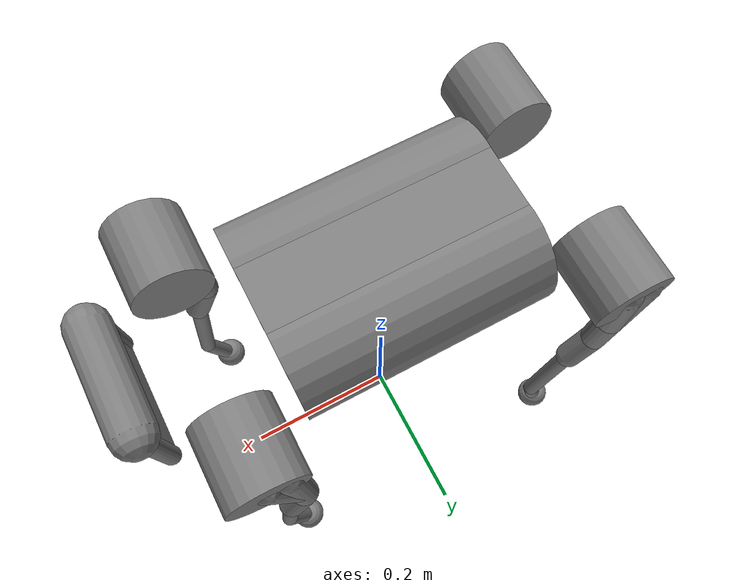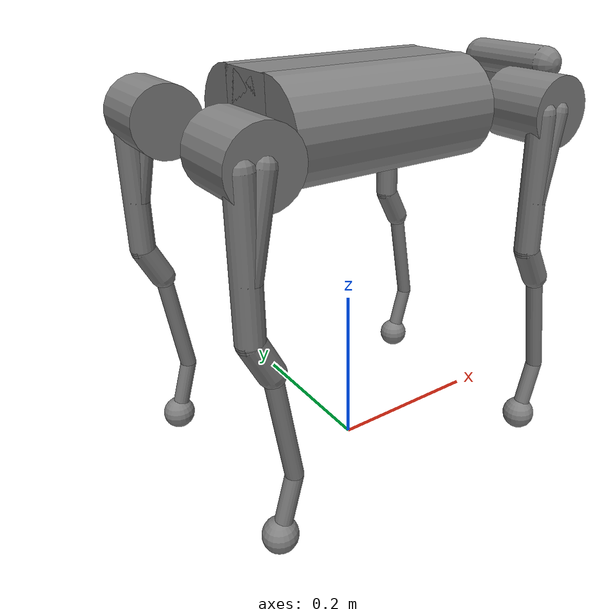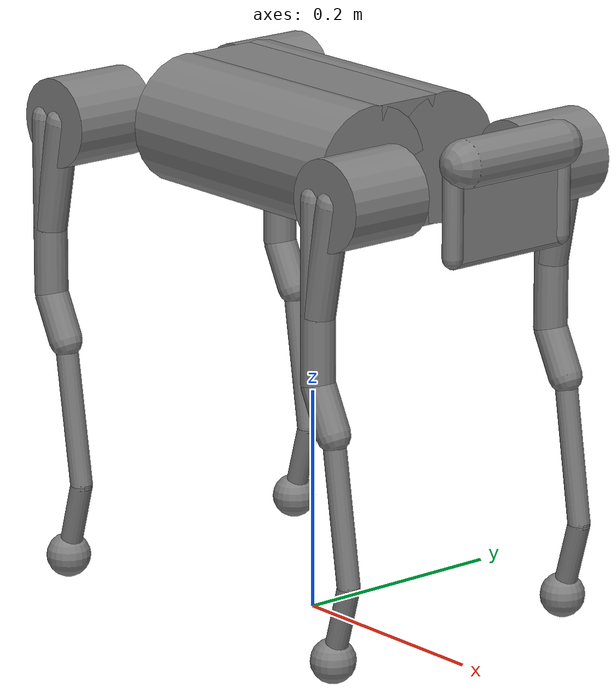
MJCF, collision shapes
<mujoco model="a1">
  <compiler angle="radian" meshdir="assets" texturedir="assets" autolimits="true"/>

  <option cone="elliptic" impratio="100"/>

  <default>
    <default class="a1">
      <geom friction="0.4" margin="0.001" condim="1"/>
      <joint axis="0 1 0" damping="0.1" armature="0.01" frictionloss="0.2"/>
      <motor ctrlrange="-33.5 33.5"/>
      <default class="abduction">
        <joint axis="1 0 0" damping="0" range="-0.802851 0.802851"/>
      </default>
      <default class="hip">
        <joint range="-1.0472 4.18879"/>
      </default>
      <default class="knee">
        <joint range="-2.69653 -0.916298"/>
      </default>
      <default class="visual">
        <geom type="mesh" contype="0" conaffinity="0" group="2" material="dark"/>
      </default>
      <default class="collision">
        <geom group="3" type="capsule"/>
        <default class="hip_left">
          <geom size="0.04 0.04" quat="1 1 0 0" type="cylinder" pos="0 0.055 0"/>
        </default>
        <default class="hip_right">
          <geom size="0.04 0.04" quat="1 1 0 0" type="cylinder" pos="0 -0.055 0"/>
        </default>
        <default class="thigh1">
          <geom size="0.015" fromto="-0.02 0 0 -0.02 0 -0.16"/>
        </default>
        <default class="thigh2">
          <geom size="0.015" fromto="0 0 0 -0.02 0 -0.1"/>
        </default>
        <default class="thigh3">
          <geom size="0.015" fromto="-0.02 0 -0.16 0 0 -0.2"/>
        </default>
        <default class="calf1">
          <geom size="0.01" fromto="0 0 0 0.02 0 -0.13"/>
        </default>
        <default class="calf2">
          <geom size="0.01" fromto="0.02 0 -0.13 0 0 -0.2"/>
        </default>
        <default class="foot">
          <geom type="sphere" size="0.02" pos="0 0 -0.2" priority="1" solimp="0.015 1 0.02" condim="6"
            friction="0.8 0.02 0.01"/>
        </default>
      </default>
    </default>
  </default>

  <asset>
    <material name="dark" specular="0" shininess="0.5" rgba="0.15 0.15 0.15 1"/>
    <texture type="2d" name="trunk_A1" file="trunk_A1.png"/>
    <material name="carbonfibre" texture="trunk_A1" specular="0" shininess="0.25"/>
    <material name="transparent" rgba="1 1 1 0.01"/>

    <mesh class="a1" file="calf.obj"/>
    <mesh class="a1" file="hip.obj"/>
    <mesh class="a1" file="thigh.obj"/>
    <mesh class="a1" file="thigh_mirror.obj"/>
    <mesh class="a1" file="trunk.obj"/>
  </asset>

  <worldbody>
    <light name="spotlight" mode="targetbodycom" target="trunk" pos="0 -1 2"/>
    <body name="trunk" pos="0 0 0.43" childclass="a1">
      <freejoint name="root_joint" />
      <inertial mass="4.713" pos="0 0.0041 -0.0005"
        fullinertia="0.0158533 0.0377999 0.0456542 -3.66e-05 -6.11e-05 -2.75e-05"/>
      <geom class="visual" mesh="trunk" material="carbonfibre"/>
      <geom class="collision" size="0.125 0.04 0.057" type="box"/>
      <geom class="collision" quat="1 0 1 0" pos="0 -0.04 0" size="0.058 0.125" type="cylinder"/>
      <geom class="collision" quat="1 0 1 0" pos="0 +0.04 0" size="0.058 0.125" type="cylinder"/>
      <geom class="collision" pos="0.25 0 0" size="0.005 0.06 0.05" type="box"/>
      <geom class="collision" pos="0.25 0.06 -0.01" size="0.009 0.035"/>
      <geom class="collision" pos="0.25 -0.06 -0.01" size="0.009 0.035"/>
      <geom class="collision" pos="0.25 0 -0.05" size="0.005 0.06" quat="1 1 0 0"/>
      <geom class="collision" pos="0.255 0 0.0355" size="0.021 0.052" quat="1 1 0 0"/>
      <site name="imu" pos="0 0 0"/>
      <body name="FL_hip" pos="0.183 0.047 0">
        <inertial mass="0.696" pos="-0.003311 0.000635 3.1e-05" quat="0.494499 0.491507 0.506268 0.507528"
          diaginertia="0.000807752 0.00055293 0.000468983"/>
        <joint class="abduction" name="FL_hip_joint"/>
        <geom class="visual" mesh="hip"/>
        <geom class="hip_left"/>
        <geom class="collision" size="0.04 0.04" pos="0 0.055 0" quat="1 1 0 0" type="cylinder"/>
        <body name="FL_thigh" pos="0 0.08505 0">
          <inertial mass="1.013" pos="-0.003237 -0.022327 -0.027326" quat="0.999125 0.00256393 -0.0409531 0.00806091"
            diaginertia="0.00555739 0.00513936 0.00133944"/>
          <joint class="hip" name="FL_thigh_joint"/>
          <geom class="visual" mesh="thigh"/>
          <geom class="thigh1"/>
          <geom class="thigh2"/>
          <geom class="thigh3"/>
          <body name="FL_calf" pos="0 0 -0.2">
            <inertial mass="0.226" pos="0.00472659 0 -0.131975" quat="0.706886 0.017653 0.017653 0.706886"
              diaginertia="0.00340344 0.00339393 3.54834e-05"/>
            <joint class="knee" name="FL_calf_joint"/>
            <geom class="visual" mesh="calf"/>
            <geom class="calf1"/>
            <geom class="calf2"/>
            <geom class="foot"/>
            <site name="FL_touch" pos="0 0 -0.2" size="0.022" material="transparent"/>
          </body>
        </body>
      </body>
      <body name="FR_hip" pos="0.183 -0.047 0">
        <inertial mass="0.696" pos="-0.003311 -0.000635 3.1e-05" quat="0.507528 0.506268 0.491507 0.494499"
                  diaginertia="0.000807752 0.00055293 0.000468983"/>
        <joint class="abduction" name="FR_hip_joint"/>
        <geom class="visual" mesh="hip" quat="0 1 0 0"/>
        <geom class="hip_right"/>
        <body name="FR_thigh" pos="0 -0.08505 0">
          <inertial mass="1.013" pos="-0.003237 0.022327 -0.027326" quat="0.999125 -0.00256393 -0.0409531 -0.00806091"
                    diaginertia="0.00555739 0.00513936 0.00133944"/>
          <joint class="hip" name="FR_thigh_joint"/>
          <geom class="visual" mesh="thigh_mirror"/>
          <geom class="thigh1"/>
          <geom class="thigh2"/>
          <geom class="thigh3"/>
          <body name="FR_calf" pos="0 0 -0.2">
            <inertial mass="0.226" pos="0.00472659 0 -0.131975" quat="0.706886 0.017653 0.017653 0.706886"
                      diaginertia="0.00340344 0.00339393 3.54834e-05"/>
            <joint class="knee" name="FR_calf_joint"/>
            <geom class="visual" mesh="calf"/>
            <geom class="calf1"/>
            <geom class="calf2"/>
            <geom class="foot"/>
            <site name="FR_touch" pos="0 0 -0.2" size="0.022" material="transparent"/>
          </body>
        </body>
      </body>
      <body name="RL_hip" pos="-0.183 0.047 0">
        <inertial mass="0.696" pos="0.003311 0.000635 3.1e-05" quat="0.506268 0.507528 0.494499 0.491507"
          diaginertia="0.000807752 0.00055293 0.000468983"/>
        <joint class="abduction" name="RL_hip_joint"/>
        <geom class="visual" quat="0 0 1 0" mesh="hip"/>
        <geom class="hip_left"/>
        <body name="RL_thigh" pos="0 0.08505 0">
          <inertial mass="1.013" pos="-0.003237 -0.022327 -0.027326" quat="0.999125 0.00256393 -0.0409531 0.00806091"
            diaginertia="0.00555739 0.00513936 0.00133944"/>
          <joint class="hip" name="RL_thigh_joint"/>
          <geom class="visual" mesh="thigh"/>
          <geom class="thigh1"/>
          <geom class="thigh2"/>
          <geom class="thigh3"/>
          <body name="RL_calf" pos="0 0 -0.2">
            <inertial mass="0.226" pos="0.00472659 0 -0.131975" quat="0.706886 0.017653 0.017653 0.706886"
              diaginertia="0.00340344 0.00339393 3.54834e-05"/>
            <joint class="knee" name="RL_calf_joint"/>
            <geom class="visual" mesh="calf"/>
            <geom class="calf1"/>
            <geom class="calf2"/>
            <geom class="foot"/>
            <site name="RL_touch" pos="0 0 -0.2" size="0.022" material="transparent"/>
          </body>
        </body>
      </body>
      <body name="RR_hip" pos="-0.183 -0.047 0">
        <inertial mass="0.696" pos="0.003311 -0.000635 3.1e-05" quat="0.491507 0.494499 0.507528 0.506268"
                  diaginertia="0.000807752 0.00055293 0.000468983"/>
        <joint class="abduction" name="RR_hip_joint"/>
        <geom class="visual" quat="0 0 0 -1" mesh="hip"/>
        <geom class="hip_right"/>
        <body name="RR_thigh" pos="0 -0.08505 0">
          <inertial mass="1.013" pos="-0.003237 0.022327 -0.027326" quat="0.999125 -0.00256393 -0.0409531 -0.00806091"
                    diaginertia="0.00555739 0.00513936 0.00133944"/>
          <joint class="hip" name="RR_thigh_joint"/>
          <geom class="visual" mesh="thigh_mirror"/>
          <geom class="thigh1"/>
          <geom class="thigh2"/>
          <geom class="thigh3"/>
          <body name="RR_calf" pos="0 0 -0.2">
            <inertial mass="0.226" pos="0.00472659 0 -0.131975" quat="0.706886 0.017653 0.017653 0.706886"
                      diaginertia="0.00340344 0.00339393 3.54834e-05"/>
            <joint class="knee" name="RR_calf_joint"/>
            <geom class="visual" mesh="calf"/>
            <geom class="calf1"/>
            <geom class="calf2"/>
            <geom class="foot"/>
            <site name="RR_touch" pos="0 0 -0.2" size="0.022" material="transparent"/>
          </body>
        </body>
      </body>
    </body>
  </worldbody>

  <actuator>
    <motor class="abduction" name="M_FL_hip_joint" joint="FL_hip_joint"/>
    <motor class="hip" name="M_FL_thigh_joint" joint="FL_thigh_joint"/>
    <motor class="knee" name="M_FL_calf_joint" joint="FL_calf_joint"/>
    <motor class="abduction" name="M_FR_hip_joint" joint="FR_hip_joint"/>
    <motor class="hip" name="M_FR_thigh_joint" joint="FR_thigh_joint"/>
    <motor class="knee" name="M_FR_calf_joint" joint="FR_calf_joint"/>
    <motor class="abduction" name="M_RL_hip_joint" joint="RL_hip_joint"/>
    <motor class="hip" name="M_RL_thigh_joint" joint="RL_thigh_joint"/>
    <motor class="knee" name="M_RL_calf_joint" joint="RL_calf_joint"/>
    <motor class="abduction" name="M_RR_hip_joint" joint="RR_hip_joint"/>
    <motor class="hip" name="M_RR_thigh_joint" joint="RR_thigh_joint"/>
    <motor class="knee" name="M_RR_calf_joint" joint="RR_calf_joint"/>
  </actuator>

  <sensor>
    <jointpos name="FL_hip_pos" joint="FL_hip_joint"/>
    <jointpos name="FL_thigh_pos" joint="FL_thigh_joint"/>
    <jointpos name="FL_calf_pos" joint="FL_calf_joint"/>
    <jointpos name="FR_hip_pos" joint="FR_hip_joint"/>
    <jointpos name="FR_thigh_pos" joint="FR_thigh_joint"/>
    <jointpos name="FR_calf_pos" joint="FR_calf_joint"/>
    <jointpos name="RL_hip_pos" joint="RL_hip_joint"/>
    <jointpos name="RL_thigh_pos" joint="RL_thigh_joint"/>
    <jointpos name="RL_calf_pos" joint="RL_calf_joint"/>
    <jointpos name="RR_hip_pos" joint="RR_hip_joint"/>
    <jointpos name="RR_thigh_pos" joint="RR_thigh_joint"/>
    <jointpos name="RR_calf_pos" joint="RR_calf_joint"/>

    <jointvel name="FL_hip_vel" joint="FL_hip_joint"/>
    <jointvel name="FL_thigh_vel" joint="FL_thigh_joint"/>
    <jointvel name="FL_calf_vel" joint="FL_calf_joint"/>
    <jointvel name="FR_hip_vel" joint="FR_hip_joint"/>
    <jointvel name="FR_thigh_vel" joint="FR_thigh_joint"/>
    <jointvel name="FR_calf_vel" joint="FR_calf_joint"/>
    <jointvel name="RL_hip_vel" joint="RL_hip_joint"/>
    <jointvel name="RL_thigh_vel" joint="RL_thigh_joint"/>
    <jointvel name="RL_calf_vel" joint="RL_calf_joint"/>
    <jointvel name="RR_hip_vel" joint="RR_hip_joint"/>
    <jointvel name="RR_thigh_vel" joint="RR_thigh_joint"/>
    <jointvel name="RR_calf_vel" joint="RR_calf_joint"/>

    <jointactuatorfrc name="FL_hip_torque" joint="FL_hip_joint" noise="0.01"/>
    <jointactuatorfrc name="FL_thigh_torque" joint="FL_thigh_joint" noise="0.01"/>
    <jointactuatorfrc name="FL_calf_torque" joint="FL_calf_joint" noise="0.01"/>
    <jointactuatorfrc name="FR_hip_torque" joint="FR_hip_joint" noise="0.01"/>
    <jointactuatorfrc name="FR_thigh_torque" joint="FR_thigh_joint" noise="0.01"/>
    <jointactuatorfrc name="FR_calf_torque" joint="FR_calf_joint" noise="0.01"/>
    <jointactuatorfrc name="RL_hip_torque" joint="RL_hip_joint" noise="0.01"/>
    <jointactuatorfrc name="RL_thigh_torque" joint="RL_thigh_joint" noise="0.01"/>
    <jointactuatorfrc name="RL_calf_torque" joint="RL_calf_joint" noise="0.01"/>
    <jointactuatorfrc name="RR_hip_torque" joint="RR_hip_joint" noise="0.01"/>
    <jointactuatorfrc name="RR_thigh_torque" joint="RR_thigh_joint" noise="0.01"/>
    <jointactuatorfrc name="RR_calf_torque" joint="RR_calf_joint" noise="0.01"/>

    <framequat name="imu_quat" objtype="site" objname="imu"/>
    <gyro name="imu_gyro" site="imu"/>
    <accelerometer name="imu_acc" site="imu"/>
    <velocimeter name="imu_vel" site="imu" />

    <framepos name="frame_pos" objtype="site" objname="imu"/>

    <touch name="FL_touch" site="FL_touch"/>
    <touch name="FR_touch" site="FR_touch"/>
    <touch name="RL_touch" site="RL_touch"/>
    <touch name="RR_touch" site="RR_touch"/>
  </sensor>

  <keyframe>
    <key name="stand" qpos="0 0 0.42 1 0 0 0 0.1000 0.8000 -1.5000 -0.1000 0.8000 -1.5000 0.1000 1.0000 -1.5000 -0.1000 1.0000 -1.5000"/>
    <key name="home" qpos="0 0 0.15 1 0 0 0 0.4 1.2 -2.7 -0.4 1.2 -2.7 0.4 1.2 -2.7 -0.4 1.2 -2.7"
      ctrl="0 0 0 0 0 0 0 0 0 0 0 0 "/>
  </keyframe>
</mujoco>
